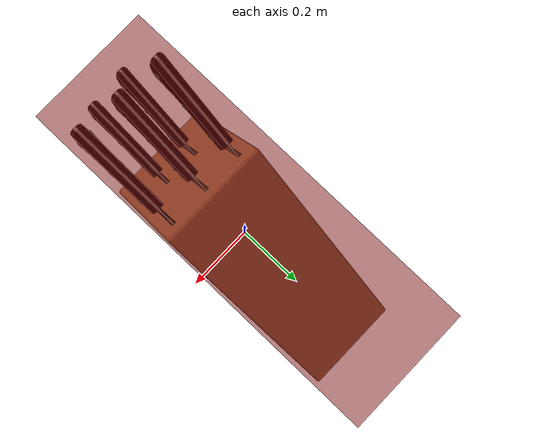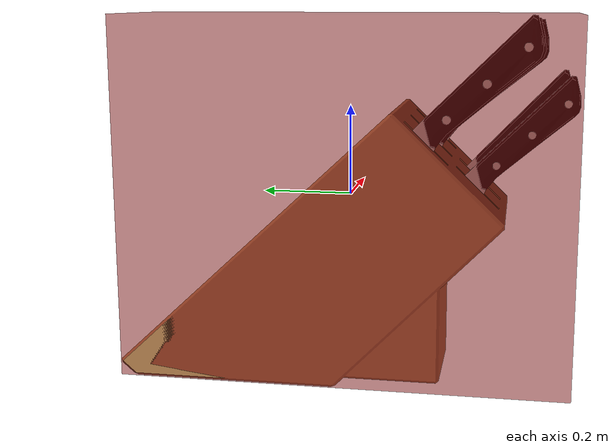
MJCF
<mujoco model="model">
  <asset>
    <texture file="visuals/material_0.png" name="tex-model" type="2d"/>
    <texture type="2d" name="image0" file="visuals/image0.png"/>
    <texture type="2d" name="image1" file="visuals/image1.png"/>
    <material name="model" reflectance="0.5" texrepeat="1 1" texture="tex-model" texuniform="false"/>
    <material name="Handle1" specular="0.5" shininess="6.930000000000001e-07" rgba="0.011135 0.011135 0.011135 1.0"/>
    <material name="Handle2" specular="0.5" shininess="6.930000000000001e-07" rgba="0.011135 0.011135 0.011135 1.0"/>
    <material name="Handle3" specular="0.5" shininess="6.930000000000001e-07" rgba="0.011135 0.011135 0.011135 1.0"/>
    <material name="Handle4" specular="0.5" shininess="6.930000000000001e-07" rgba="0.011135 0.011135 0.011135 1.0"/>
    <material name="Handle5" specular="0.5" shininess="6.930000000000001e-07" rgba="0.011135 0.011135 0.011135 1.0"/>
    <material name="SheetMetal1" texture="image0" specular="0.5" shininess="0.028284268"/>
    <material name="SheetMetal2" texture="image0" specular="0.5" shininess="0.028284268"/>
    <material name="SheetMetal3" texture="image0" specular="0.5" shininess="0.028284268"/>
    <material name="SheetMetal4" texture="image0" specular="0.5" shininess="0.028284268"/>
    <material name="SheetMetal5" texture="image0" specular="0.5" shininess="0.028284268"/>
    <material name="WoodenBase" texture="image1" specular="0.5" shininess="5.5449999999999994e-06"/>
    <mesh file="visuals/model_0.obj" name="model_0_vis" scale="1 1 1"/>
    <mesh file="visuals/model_1.obj" name="model_1_vis" scale="1 1 1"/>
    <mesh file="visuals/model_2.obj" name="model_2_vis" scale="1 1 1"/>
    <mesh file="visuals/model_3.obj" name="model_3_vis" scale="1 1 1"/>
    <mesh file="visuals/model_4.obj" name="model_4_vis" scale="1 1 1"/>
    <mesh file="visuals/model_5.obj" name="model_5_vis" scale="1 1 1"/>
    <mesh file="visuals/model_6.obj" name="model_6_vis" scale="1 1 1"/>
    <mesh file="visuals/model_7.obj" name="model_7_vis" scale="1 1 1"/>
    <mesh file="visuals/model_8.obj" name="model_8_vis" scale="1 1 1"/>
    <mesh file="visuals/model_9.obj" name="model_9_vis" scale="1 1 1"/>
    <mesh file="visuals/model_10.obj" name="model_10_vis" scale="1 1 1"/>
  </asset>
  <default>
    <default class="visual">
      <geom conaffinity="0" contype="0" group="1" type="mesh"/>
    </default>
    <default class="collision">
      <geom group="0" rgba="0.5 0 0 0.5"/>
    </default>
    <default class="region">
      <geom group="1" conaffinity="0" contype="0" rgba="0 1 0 0"/>
    </default>
  </default>
  <worldbody>
    <body>
      <!-- exterior bounding box points -->
      <!-- interior bounding box points -->
      <body name="object">
        <geom solimp="0.998 0.998 0.001" solref="0.001 1" density="100" friction="0.95 0.3 0.1" type="mesh" mesh="model_0_vis" material="WoodenBase" class="visual"/>
        <geom solimp="0.998 0.998 0.001" solref="0.001 1" density="100" friction="0.95 0.3 0.1" type="mesh" mesh="model_1_vis" material="SheetMetal5" class="visual"/>
        <geom solimp="0.998 0.998 0.001" solref="0.001 1" density="100" friction="0.95 0.3 0.1" type="mesh" mesh="model_2_vis" material="SheetMetal4" class="visual"/>
        <geom solimp="0.998 0.998 0.001" solref="0.001 1" density="100" friction="0.95 0.3 0.1" type="mesh" mesh="model_3_vis" material="SheetMetal3" class="visual"/>
        <geom solimp="0.998 0.998 0.001" solref="0.001 1" density="100" friction="0.95 0.3 0.1" type="mesh" mesh="model_4_vis" material="SheetMetal2" class="visual"/>
        <geom solimp="0.998 0.998 0.001" solref="0.001 1" density="100" friction="0.95 0.3 0.1" type="mesh" mesh="model_5_vis" material="SheetMetal1" class="visual"/>
        <geom solimp="0.998 0.998 0.001" solref="0.001 1" density="100" friction="0.95 0.3 0.1" type="mesh" mesh="model_6_vis" material="Handle5" class="visual"/>
        <geom solimp="0.998 0.998 0.001" solref="0.001 1" density="100" friction="0.95 0.3 0.1" type="mesh" mesh="model_7_vis" material="Handle4" class="visual"/>
        <geom solimp="0.998 0.998 0.001" solref="0.001 1" density="100" friction="0.95 0.3 0.1" type="mesh" mesh="model_8_vis" material="Handle3" class="visual"/>
        <geom solimp="0.998 0.998 0.001" solref="0.001 1" density="100" friction="0.95 0.3 0.1" type="mesh" mesh="model_9_vis" material="Handle2" class="visual"/>
        <geom solimp="0.998 0.998 0.001" solref="0.001 1" density="100" friction="0.95 0.3 0.1" type="mesh" mesh="model_10_vis" material="Handle1" class="visual"/>
        <geom class="collision" type="box" pos="0 0 0" size="0.16647017033967612 0.5 0.40364005807611314"/>
        <geom class="region" name="reg_main" type="box" pos="0.0 0.0 0.0" size="0.16647017033967612 0.5 0.40364005807611314"/>
      </body>
    </body>
  </worldbody>
</mujoco>
